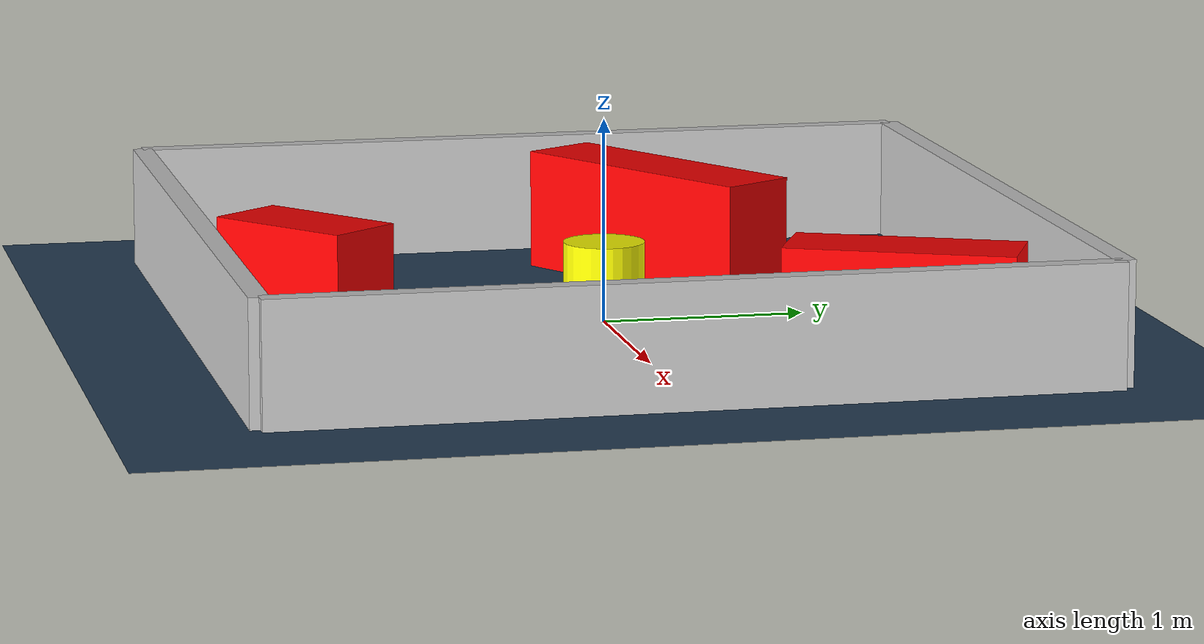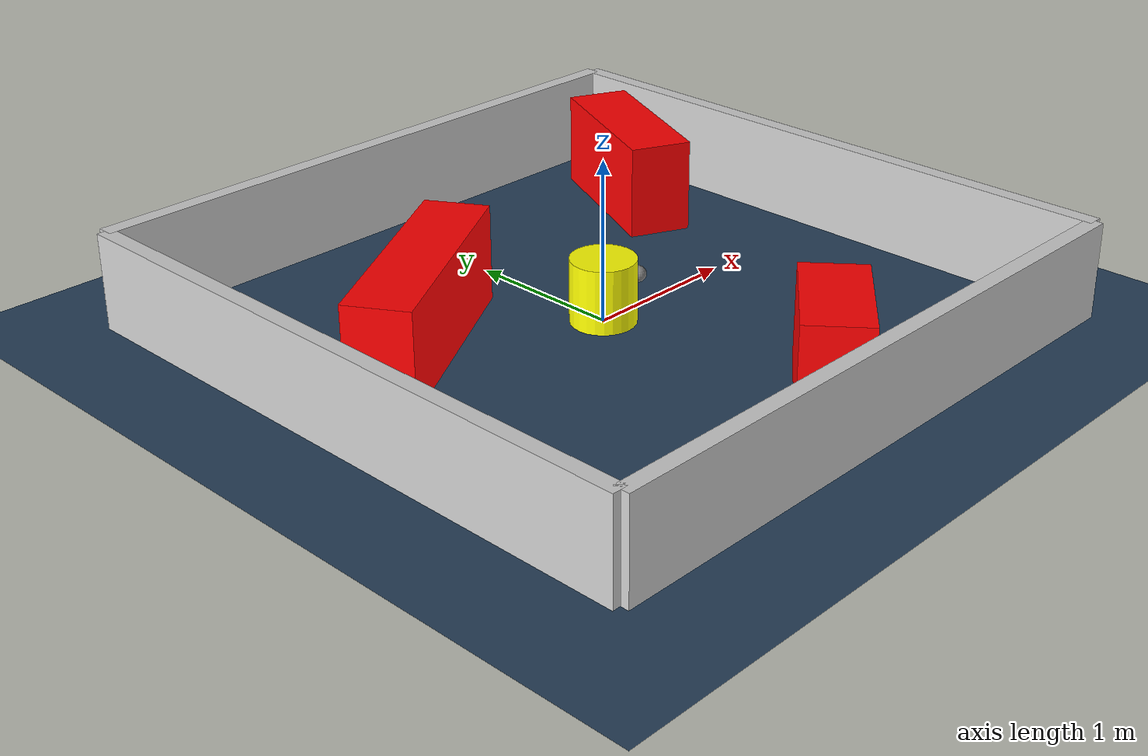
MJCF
<?xml version="1.0" ?>
<mujoco model="generated_environment">
  <option timestep="0.01" integrator="RK4" cone="elliptic"/>
  <default>
    <geom density="1"/>
  </default>
  <asset>
    <texture builtin="gradient" height="3072" rgb1="0.3 0.5 0.7" rgb2="0 0 0" type="skybox" width="512"/>
    <texture builtin="checker" height="300" mark="edge" markrgb="0.8 0.8 0.8" name="groundplane" rgb1="0.2 0.3 0.4" rgb2="0.1 0.2 0.3" type="2d" width="300"/>
    <material name="groundplane" reflectance="0.2" texrepeat="5 5" texture="groundplane" texuniform="true"/>
    <material name="robot" rgba="0.0 1.0 0.0 1"/>
  </asset>
  <worldbody>
    <light dir="0 0 -1" directional="true" pos="0 0 1.5"/>
    <geom condim="4" friction="1.0 0.005 0.001" material="groundplane" name="floor" size="0 0 0.05" type="plane"/>
    <body name="walls">
      <geom name="wall_1" condim="4" pos="-2.0 0.0 0.3" rgba="0.800000011920929 0.800000011920929 0.800000011920929 1.0" size="0.05 2.0 0.3" type="box"/>
      <geom name="wall_2" condim="4" pos="2.0 0.0 0.3" rgba="0.800000011920929 0.800000011920929 0.800000011920929 1.0" size="0.05 2.0 0.3" type="box"/>
      <geom name="wall_3" condim="4" pos="0.0 -2.0 0.3" rgba="0.800000011920929 0.800000011920929 0.800000011920929 1.0" size="2.0 0.05 0.3" type="box"/>
      <geom name="wall_4" condim="4" pos="0.0 2.0 0.3" rgba="0.800000011920929 0.800000011920929 0.800000011920929 1.0" size="2.0 0.05 0.3" type="box"/>
    </body>
    <body name="robot">
      <joint name="joint_x" type="slide" pos="0 0 0" axis="1 0 0"/>
      <joint name="joint_y" type="slide" pos="0 0 0" axis="0 1 0"/>
      <geom name="robot" type="sphere" pos="0.3 0.0 0.2" size="0.05" mass="5." friction="1.0 0.005 0.0001" condim="4" rgba="0.5 0.5 0.5 1.0"/>
      <site name="sensor_ball"/>
    </body>
    <body name="obstacle_movable_1">
      <geom name="obstacle_movable_1" condim="4" pos="0.0 0.0 0.2" euler="0 0 0.0" friction="1.0 0.005 0.001" rgba="1.0 1.0 0.0 1.0" size="0.2 0.2 0.0" type="cylinder" mass="0.1"/>
      <joint type="free"/>
    </body>
    <body name="obstacle_2_static">
      <geom name="obstacle_2_static" condim="4" pos="-0.9658002681611765 0.48956679544928616 0.3" euler="0 0 210.96495738046733" friction="1.0 0.005 0.001" rgba="1 0 0 1" size="0.7287179335936014 0.2 0.3" type="box"/>
    </body>
    <body name="obstacle_3_static">
      <geom name="obstacle_3_static" condim="4" pos="0.19015805660396867 -1.5051974681151592 0.3" euler="0 0 218.73278837014934" friction="1.0 0.005 0.001" rgba="1 0 0 1" size="0.387209157825164 0.2 0.3" type="box"/>
    </body>
    <body name="obstacle_4_static">
      <geom name="obstacle_4_static" condim="4" pos="1.4176234221135777 1.1178980964398073 0.3" euler="0 0 245.30950492156887" friction="1.0 0.005 0.001" rgba="1 0 0 1" size="0.5482546412906717 0.2 0.3" type="box"/>
    </body>
  </worldbody>
  <actuator>
    <motor name="actuator_x" joint="joint_x" gear="1" ctrlrange="-1 1"/>
    <motor name="actuator_y" joint="joint_y" gear="1" ctrlrange="-1 1"/>
  </actuator>
</mujoco>
